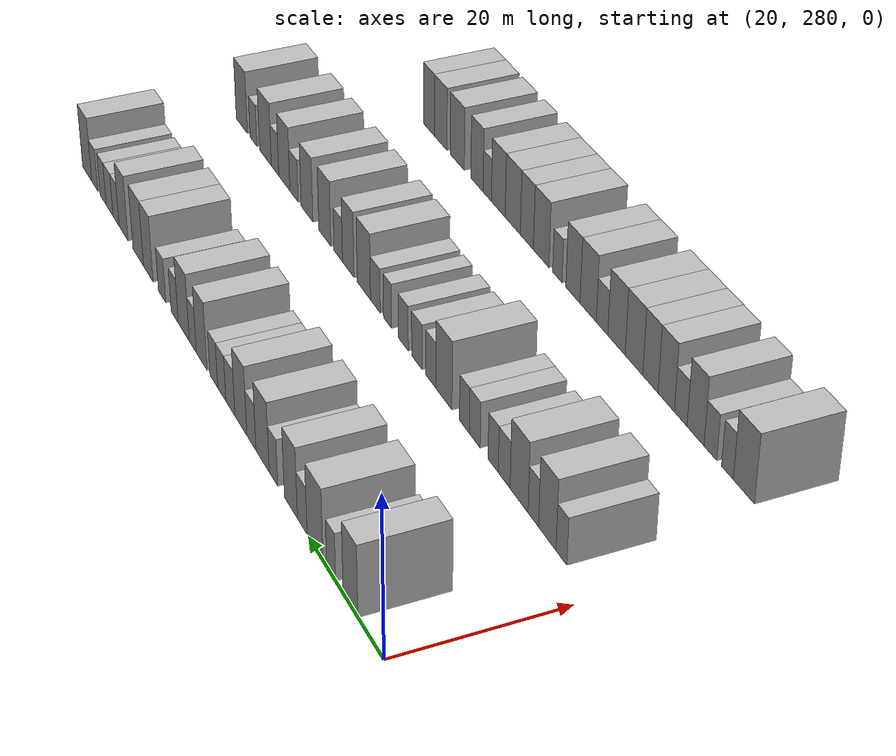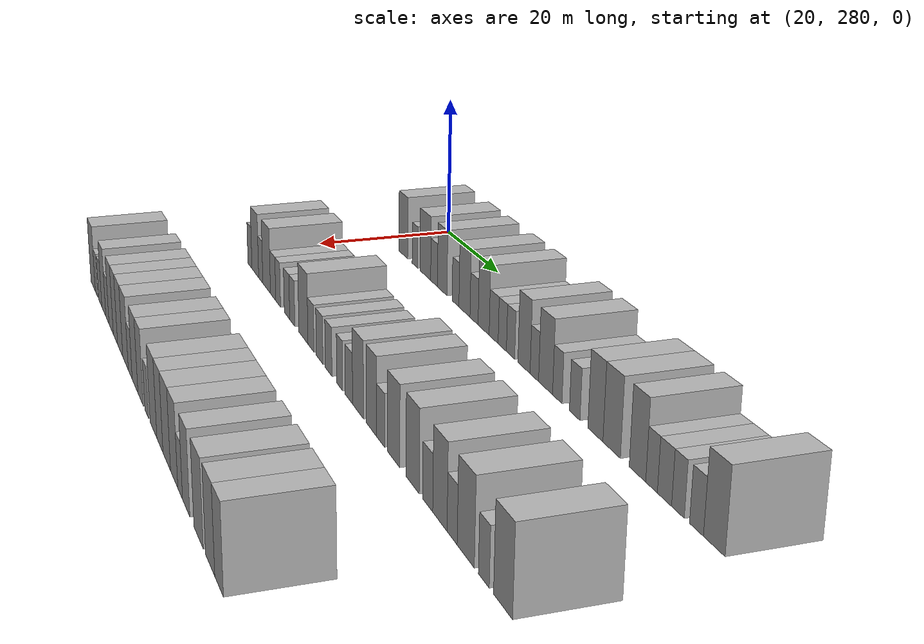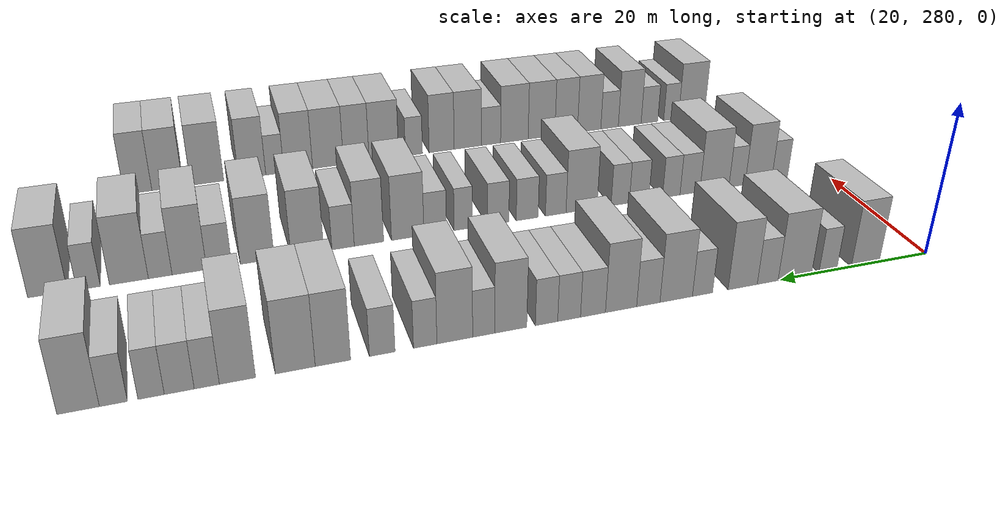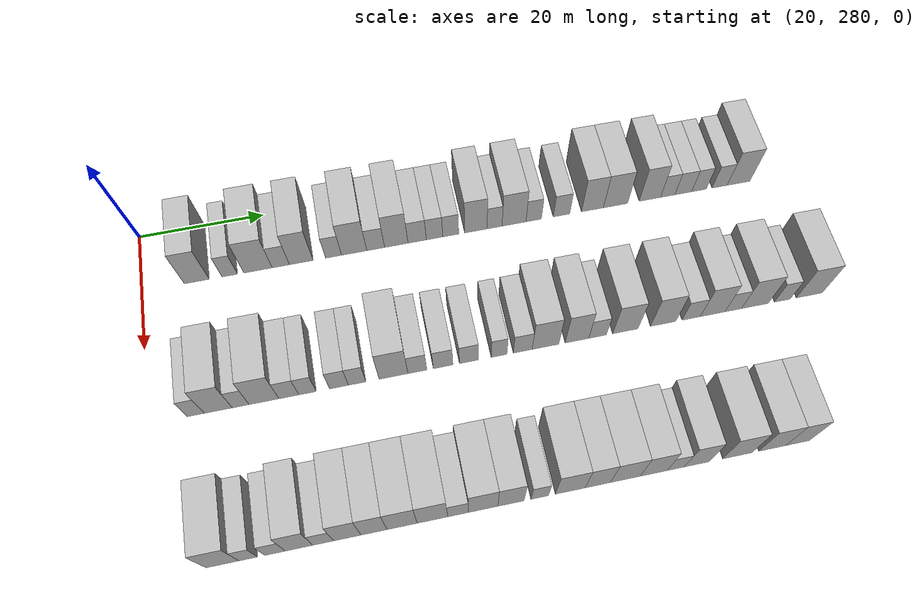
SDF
<sdf version="1.6">
 <world name="default">
  <model name="building_169">
   <static>1</static>
   <pose>25.0000 288.5307 0 0.000000 0.000000 0.000000</pose>
   <link name="link">
    <pose>0 0 4.50 0 0 0</pose>
    <collision name="collision"><geometry><box><size>10.0000 3.8896 9.0000</size></box></geometry></collision>
    <visual name="visual">
     <cast_shadows>0</cast_shadows>
     <geometry><box><size>10.0000 3.8896 9.0000</size></box></geometry>
     <material>
      <script>
       <uri>model://HANNAS_wall/materials/scripts</uri>
       <uri>model://HANNAS_wall/materials/textures</uri>
       <name>vrc/HANNAS_wall</name>
      </script>
     </material>
    </visual>
   </link>
  </model>
  <model name="building_170">
   <static>1</static>
   <pose>25.0000 293.6876 0 0.000000 0.000000 0.000000</pose>
   <link name="link">
    <pose>0 0 3.00 0 0 0</pose>
    <collision name="collision"><geometry><box><size>10.0000 2.4241 6.0000</size></box></geometry></collision>
    <visual name="visual">
     <cast_shadows>0</cast_shadows>
     <geometry><box><size>10.0000 2.4241 6.0000</size></box></geometry>
     <material>
      <script>
       <uri>model://HANNAS_wall/materials/scripts</uri>
       <uri>model://HANNAS_wall/materials/textures</uri>
       <name>vrc/HANNAS_wall</name>
      </script>
     </material>
    </visual>
   </link>
  </model>
  <model name="building_171">
   <static>1</static>
   <pose>25.0000 298.1371 0 0.000000 0.000000 0.000000</pose>
   <link name="link">
    <pose>0 0 4.50 0 0 0</pose>
    <collision name="collision"><geometry><box><size>10.0000 4.4749 9.0000</size></box></geometry></collision>
    <visual name="visual">
     <cast_shadows>0</cast_shadows>
     <geometry><box><size>10.0000 4.4749 9.0000</size></box></geometry>
     <material>
      <script>
       <uri>model://HANNAS_wall/materials/scripts</uri>
       <uri>model://HANNAS_wall/materials/textures</uri>
       <name>vrc/HANNAS_wall</name>
      </script>
     </material>
    </visual>
   </link>
  </model>
  <model name="building_172">
   <static>1</static>
   <pose>25.0000 301.7484 0 0.000000 0.000000 0.000000</pose>
   <link name="link">
    <pose>0 0 3.00 0 0 0</pose>
    <collision name="collision"><geometry><box><size>10.0000 2.7477 6.0000</size></box></geometry></collision>
    <visual name="visual">
     <cast_shadows>0</cast_shadows>
     <geometry><box><size>10.0000 2.7477 6.0000</size></box></geometry>
     <material>
      <script>
       <uri>model://HANNAS_wall/materials/scripts</uri>
       <uri>model://HANNAS_wall/materials/textures</uri>
       <name>vrc/HANNAS_wall</name>
      </script>
     </material>
    </visual>
   </link>
  </model>
  <model name="building_173">
   <static>1</static>
   <pose>25.0000 305.0171 0 0.000000 0.000000 0.000000</pose>
   <link name="link">
    <pose>0 0 4.50 0 0 0</pose>
    <collision name="collision"><geometry><box><size>10.0000 3.7898 9.0000</size></box></geometry></collision>
    <visual name="visual">
     <cast_shadows>0</cast_shadows>
     <geometry><box><size>10.0000 3.7898 9.0000</size></box></geometry>
     <material>
      <script>
       <uri>model://HANNAS_wall/materials/scripts</uri>
       <uri>model://HANNAS_wall/materials/textures</uri>
       <name>vrc/HANNAS_wall</name>
      </script>
     </material>
    </visual>
   </link>
  </model>
  <model name="building_174">
   <static>1</static>
   <pose>25.0000 310.1900 0 0.000000 0.000000 0.000000</pose>
   <link name="link">
    <pose>0 0 3.00 0 0 0</pose>
    <collision name="collision"><geometry><box><size>10.0000 2.5559 6.0000</size></box></geometry></collision>
    <visual name="visual">
     <cast_shadows>0</cast_shadows>
     <geometry><box><size>10.0000 2.5559 6.0000</size></box></geometry>
     <material>
      <script>
       <uri>model://HANNAS_wall/materials/scripts</uri>
       <uri>model://HANNAS_wall/materials/textures</uri>
       <name>vrc/HANNAS_wall</name>
      </script>
     </material>
    </visual>
   </link>
  </model>
  <model name="building_175">
   <static>1</static>
   <pose>25.0000 313.5034 0 0.000000 0.000000 0.000000</pose>
   <link name="link">
    <pose>0 0 4.50 0 0 0</pose>
    <collision name="collision"><geometry><box><size>10.0000 4.0708 9.0000</size></box></geometry></collision>
    <visual name="visual">
     <cast_shadows>0</cast_shadows>
     <geometry><box><size>10.0000 4.0708 9.0000</size></box></geometry>
     <material>
      <script>
       <uri>model://HANNAS_wall/materials/scripts</uri>
       <uri>model://HANNAS_wall/materials/textures</uri>
       <name>vrc/HANNAS_wall</name>
      </script>
     </material>
    </visual>
   </link>
  </model>
  <model name="building_176">
   <static>1</static>
   <pose>25.0000 316.9771 0 0.000000 0.000000 0.000000</pose>
   <link name="link">
    <pose>0 0 3.00 0 0 0</pose>
    <collision name="collision"><geometry><box><size>10.0000 2.8767 6.0000</size></box></geometry></collision>
    <visual name="visual">
     <cast_shadows>0</cast_shadows>
     <geometry><box><size>10.0000 2.8767 6.0000</size></box></geometry>
     <material>
      <script>
       <uri>model://HANNAS_wall/materials/scripts</uri>
       <uri>model://HANNAS_wall/materials/textures</uri>
       <name>vrc/HANNAS_wall</name>
      </script>
     </material>
    </visual>
   </link>
  </model>
  <model name="building_177">
   <static>1</static>
   <pose>25.0000 320.3161 0 0.000000 0.000000 0.000000</pose>
   <link name="link">
    <pose>0 0 4.50 0 0 0</pose>
    <collision name="collision"><geometry><box><size>10.0000 3.8013 9.0000</size></box></geometry></collision>
    <visual name="visual">
     <cast_shadows>0</cast_shadows>
     <geometry><box><size>10.0000 3.8013 9.0000</size></box></geometry>
     <material>
      <script>
       <uri>model://HANNAS_wall/materials/scripts</uri>
       <uri>model://HANNAS_wall/materials/textures</uri>
       <name>vrc/HANNAS_wall</name>
      </script>
     </material>
    </visual>
   </link>
  </model>
  <model name="building_178">
   <static>1</static>
   <pose>25.0000 323.7119 0 0.000000 0.000000 0.000000</pose>
   <link name="link">
    <pose>0 0 3.00 0 0 0</pose>
    <collision name="collision"><geometry><box><size>10.0000 2.9903 6.0000</size></box></geometry></collision>
    <visual name="visual">
     <cast_shadows>0</cast_shadows>
     <geometry><box><size>10.0000 2.9903 6.0000</size></box></geometry>
     <material>
      <script>
       <uri>model://HANNAS_wall/materials/scripts</uri>
       <uri>model://HANNAS_wall/materials/textures</uri>
       <name>vrc/HANNAS_wall</name>
      </script>
     </material>
    </visual>
   </link>
  </model>
  <model name="building_179">
   <static>1</static>
   <pose>25.0000 326.5555 0 0.000000 0.000000 0.000000</pose>
   <link name="link">
    <pose>0 0 3.00 0 0 0</pose>
    <collision name="collision"><geometry><box><size>10.0000 2.6970 6.0000</size></box></geometry></collision>
    <visual name="visual">
     <cast_shadows>0</cast_shadows>
     <geometry><box><size>10.0000 2.6970 6.0000</size></box></geometry>
     <material>
      <script>
       <uri>model://HANNAS_wall/materials/scripts</uri>
       <uri>model://HANNAS_wall/materials/textures</uri>
       <name>vrc/HANNAS_wall</name>
      </script>
     </material>
    </visual>
   </link>
  </model>
  <model name="building_180">
   <static>1</static>
   <pose>25.0000 329.2104 0 0.000000 0.000000 0.000000</pose>
   <link name="link">
    <pose>0 0 3.00 0 0 0</pose>
    <collision name="collision"><geometry><box><size>10.0000 2.6129 6.0000</size></box></geometry></collision>
    <visual name="visual">
     <cast_shadows>0</cast_shadows>
     <geometry><box><size>10.0000 2.6129 6.0000</size></box></geometry>
     <material>
      <script>
       <uri>model://HANNAS_wall/materials/scripts</uri>
       <uri>model://HANNAS_wall/materials/textures</uri>
       <name>vrc/HANNAS_wall</name>
      </script>
     </material>
    </visual>
   </link>
  </model>
  <model name="building_181">
   <static>1</static>
   <pose>25.0000 333.3618 0 0.000000 0.000000 0.000000</pose>
   <link name="link">
    <pose>0 0 4.50 0 0 0</pose>
    <collision name="collision"><geometry><box><size>10.0000 3.6899 9.0000</size></box></geometry></collision>
    <visual name="visual">
     <cast_shadows>0</cast_shadows>
     <geometry><box><size>10.0000 3.6899 9.0000</size></box></geometry>
     <material>
      <script>
       <uri>model://HANNAS_wall/materials/scripts</uri>
       <uri>model://HANNAS_wall/materials/textures</uri>
       <name>vrc/HANNAS_wall</name>
      </script>
     </material>
    </visual>
   </link>
  </model>
  <model name="building_182">
   <static>1</static>
   <pose>25.0000 336.4536 0 0.000000 0.000000 0.000000</pose>
   <link name="link">
    <pose>0 0 3.00 0 0 0</pose>
    <collision name="collision"><geometry><box><size>10.0000 2.4937 6.0000</size></box></geometry></collision>
    <visual name="visual">
     <cast_shadows>0</cast_shadows>
     <geometry><box><size>10.0000 2.4937 6.0000</size></box></geometry>
     <material>
      <script>
       <uri>model://HANNAS_wall/materials/scripts</uri>
       <uri>model://HANNAS_wall/materials/textures</uri>
       <name>vrc/HANNAS_wall</name>
      </script>
     </material>
    </visual>
   </link>
  </model>
  <model name="building_183">
   <static>1</static>
   <pose>25.0000 339.6924 0 0.000000 0.000000 0.000000</pose>
   <link name="link">
    <pose>0 0 4.50 0 0 0</pose>
    <collision name="collision"><geometry><box><size>10.0000 3.9839 9.0000</size></box></geometry></collision>
    <visual name="visual">
     <cast_shadows>0</cast_shadows>
     <geometry><box><size>10.0000 3.9839 9.0000</size></box></geometry>
     <material>
      <script>
       <uri>model://HANNAS_wall/materials/scripts</uri>
       <uri>model://HANNAS_wall/materials/textures</uri>
       <name>vrc/HANNAS_wall</name>
      </script>
     </material>
    </visual>
   </link>
  </model>
  <model name="building_184">
   <static>1</static>
   <pose>25.0000 342.9721 0 0.000000 0.000000 0.000000</pose>
   <link name="link">
    <pose>0 0 3.00 0 0 0</pose>
    <collision name="collision"><geometry><box><size>10.0000 2.5756 6.0000</size></box></geometry></collision>
    <visual name="visual">
     <cast_shadows>0</cast_shadows>
     <geometry><box><size>10.0000 2.5756 6.0000</size></box></geometry>
     <material>
      <script>
       <uri>model://HANNAS_wall/materials/scripts</uri>
       <uri>model://HANNAS_wall/materials/textures</uri>
       <name>vrc/HANNAS_wall</name>
      </script>
     </material>
    </visual>
   </link>
  </model>
  <model name="building_185">
   <static>1</static>
   <pose>25.0000 347.6410 0 0.000000 0.000000 0.000000</pose>
   <link name="link">
    <pose>0 0 3.00 0 0 0</pose>
    <collision name="collision"><geometry><box><size>10.0000 2.7623 6.0000</size></box></geometry></collision>
    <visual name="visual">
     <cast_shadows>0</cast_shadows>
     <geometry><box><size>10.0000 2.7623 6.0000</size></box></geometry>
     <material>
      <script>
       <uri>model://HANNAS_wall/materials/scripts</uri>
       <uri>model://HANNAS_wall/materials/textures</uri>
       <name>vrc/HANNAS_wall</name>
      </script>
     </material>
    </visual>
   </link>
  </model>
  <model name="building_186">
   <static>1</static>
   <pose>25.0000 352.8762 0 0.000000 0.000000 0.000000</pose>
   <link name="link">
    <pose>0 0 4.50 0 0 0</pose>
    <collision name="collision"><geometry><box><size>10.0000 3.7081 9.0000</size></box></geometry></collision>
    <visual name="visual">
     <cast_shadows>0</cast_shadows>
     <geometry><box><size>10.0000 3.7081 9.0000</size></box></geometry>
     <material>
      <script>
       <uri>model://HANNAS_wall/materials/scripts</uri>
       <uri>model://HANNAS_wall/materials/textures</uri>
       <name>vrc/HANNAS_wall</name>
      </script>
     </material>
    </visual>
   </link>
  </model>
  <model name="building_187">
   <static>1</static>
   <pose>25.0000 356.7947 0 0.000000 0.000000 0.000000</pose>
   <link name="link">
    <pose>0 0 4.50 0 0 0</pose>
    <collision name="collision"><geometry><box><size>10.0000 4.1288 9.0000</size></box></geometry></collision>
    <visual name="visual">
     <cast_shadows>0</cast_shadows>
     <geometry><box><size>10.0000 4.1288 9.0000</size></box></geometry>
     <material>
      <script>
       <uri>model://HANNAS_wall/materials/scripts</uri>
       <uri>model://HANNAS_wall/materials/textures</uri>
       <name>vrc/HANNAS_wall</name>
      </script>
     </material>
    </visual>
   </link>
  </model>
  <model name="building_188">
   <static>1</static>
   <pose>25.0000 362.6738 0 0.000000 0.000000 0.000000</pose>
   <link name="link">
    <pose>0 0 4.50 0 0 0</pose>
    <collision name="collision"><geometry><box><size>10.0000 3.6294 9.0000</size></box></geometry></collision>
    <visual name="visual">
     <cast_shadows>0</cast_shadows>
     <geometry><box><size>10.0000 3.6294 9.0000</size></box></geometry>
     <material>
      <script>
       <uri>model://HANNAS_wall/materials/scripts</uri>
       <uri>model://HANNAS_wall/materials/textures</uri>
       <name>vrc/HANNAS_wall</name>
      </script>
     </material>
    </visual>
   </link>
  </model>
  <model name="building_189">
   <static>1</static>
   <pose>25.0000 365.7269 0 0.000000 0.000000 0.000000</pose>
   <link name="link">
    <pose>0 0 3.00 0 0 0</pose>
    <collision name="collision"><geometry><box><size>10.0000 2.4767 6.0000</size></box></geometry></collision>
    <visual name="visual">
     <cast_shadows>0</cast_shadows>
     <geometry><box><size>10.0000 2.4767 6.0000</size></box></geometry>
     <material>
      <script>
       <uri>model://HANNAS_wall/materials/scripts</uri>
       <uri>model://HANNAS_wall/materials/textures</uri>
       <name>vrc/HANNAS_wall</name>
      </script>
     </material>
    </visual>
   </link>
  </model>
  <model name="building_190">
   <static>1</static>
   <pose>25.0000 368.4239 0 0.000000 0.000000 0.000000</pose>
   <link name="link">
    <pose>0 0 3.00 0 0 0</pose>
    <collision name="collision"><geometry><box><size>10.0000 2.9174 6.0000</size></box></geometry></collision>
    <visual name="visual">
     <cast_shadows>0</cast_shadows>
     <geometry><box><size>10.0000 2.9174 6.0000</size></box></geometry>
     <material>
      <script>
       <uri>model://HANNAS_wall/materials/scripts</uri>
       <uri>model://HANNAS_wall/materials/textures</uri>
       <name>vrc/HANNAS_wall</name>
      </script>
     </material>
    </visual>
   </link>
  </model>
  <model name="building_191">
   <static>1</static>
   <pose>25.0000 371.1505 0 0.000000 0.000000 0.000000</pose>
   <link name="link">
    <pose>0 0 3.00 0 0 0</pose>
    <collision name="collision"><geometry><box><size>10.0000 2.5357 6.0000</size></box></geometry></collision>
    <visual name="visual">
     <cast_shadows>0</cast_shadows>
     <geometry><box><size>10.0000 2.5357 6.0000</size></box></geometry>
     <material>
      <script>
       <uri>model://HANNAS_wall/materials/scripts</uri>
       <uri>model://HANNAS_wall/materials/textures</uri>
       <name>vrc/HANNAS_wall</name>
      </script>
     </material>
    </visual>
   </link>
  </model>
  <model name="building_192">
   <static>1</static>
   <pose>25.0000 374.7431 0 0.000000 0.000000 0.000000</pose>
   <link name="link">
    <pose>0 0 3.00 0 0 0</pose>
    <collision name="collision"><geometry><box><size>10.0000 2.6495 6.0000</size></box></geometry></collision>
    <visual name="visual">
     <cast_shadows>0</cast_shadows>
     <geometry><box><size>10.0000 2.6495 6.0000</size></box></geometry>
     <material>
      <script>
       <uri>model://HANNAS_wall/materials/scripts</uri>
       <uri>model://HANNAS_wall/materials/textures</uri>
       <name>vrc/HANNAS_wall</name>
      </script>
     </material>
    </visual>
   </link>
  </model>
  <model name="building_193">
   <static>1</static>
   <pose>25.0000 378.0452 0 0.000000 0.000000 0.000000</pose>
   <link name="link">
    <pose>0 0 4.50 0 0 0</pose>
    <collision name="collision"><geometry><box><size>10.0000 3.9546 9.0000</size></box></geometry></collision>
    <visual name="visual">
     <cast_shadows>0</cast_shadows>
     <geometry><box><size>10.0000 3.9546 9.0000</size></box></geometry>
     <material>
      <script>
       <uri>model://HANNAS_wall/materials/scripts</uri>
       <uri>model://HANNAS_wall/materials/textures</uri>
       <name>vrc/HANNAS_wall</name>
      </script>
     </material>
    </visual>
   </link>
  </model>
  <model name="building_361">
   <static>1</static>
   <pose>47.0000 286.9057 0 0.000000 0.000000 0.000000</pose>
   <link name="link">
    <pose>0 0 3.00 0 0 0</pose>
    <collision name="collision"><geometry><box><size>10.0000 2.4631 6.0000</size></box></geometry></collision>
    <visual name="visual">
     <cast_shadows>0</cast_shadows>
     <geometry><box><size>10.0000 2.4631 6.0000</size></box></geometry>
     <material>
      <script>
       <uri>model://HANNAS_wall/materials/scripts</uri>
       <uri>model://HANNAS_wall/materials/textures</uri>
       <name>vrc/HANNAS_wall</name>
      </script>
     </material>
    </visual>
   </link>
  </model>
  <model name="building_362">
   <static>1</static>
   <pose>47.0000 290.1833 0 0.000000 0.000000 0.000000</pose>
   <link name="link">
    <pose>0 0 4.50 0 0 0</pose>
    <collision name="collision"><geometry><box><size>10.0000 4.0920 9.0000</size></box></geometry></collision>
    <visual name="visual">
     <cast_shadows>0</cast_shadows>
     <geometry><box><size>10.0000 4.0920 9.0000</size></box></geometry>
     <material>
      <script>
       <uri>model://HANNAS_wall/materials/scripts</uri>
       <uri>model://HANNAS_wall/materials/textures</uri>
       <name>vrc/HANNAS_wall</name>
      </script>
     </material>
    </visual>
   </link>
  </model>
  <model name="building_363">
   <static>1</static>
   <pose>47.0000 293.4669 0 0.000000 0.000000 0.000000</pose>
   <link name="link">
    <pose>0 0 3.00 0 0 0</pose>
    <collision name="collision"><geometry><box><size>10.0000 2.4753 6.0000</size></box></geometry></collision>
    <visual name="visual">
     <cast_shadows>0</cast_shadows>
     <geometry><box><size>10.0000 2.4753 6.0000</size></box></geometry>
     <material>
      <script>
       <uri>model://HANNAS_wall/materials/scripts</uri>
       <uri>model://HANNAS_wall/materials/textures</uri>
       <name>vrc/HANNAS_wall</name>
      </script>
     </material>
    </visual>
   </link>
  </model>
  <model name="building_364">
   <static>1</static>
   <pose>47.0000 296.8909 0 0.000000 0.000000 0.000000</pose>
   <link name="link">
    <pose>0 0 4.50 0 0 0</pose>
    <collision name="collision"><geometry><box><size>10.0000 4.3726 9.0000</size></box></geometry></collision>
    <visual name="visual">
     <cast_shadows>0</cast_shadows>
     <geometry><box><size>10.0000 4.3726 9.0000</size></box></geometry>
     <material>
      <script>
       <uri>model://HANNAS_wall/materials/scripts</uri>
       <uri>model://HANNAS_wall/materials/textures</uri>
       <name>vrc/HANNAS_wall</name>
      </script>
     </material>
    </visual>
   </link>
  </model>
  <model name="building_365">
   <static>1</static>
   <pose>47.0000 300.5530 0 0.000000 0.000000 0.000000</pose>
   <link name="link">
    <pose>0 0 3.00 0 0 0</pose>
    <collision name="collision"><geometry><box><size>10.0000 2.9516 6.0000</size></box></geometry></collision>
    <visual name="visual">
     <cast_shadows>0</cast_shadows>
     <geometry><box><size>10.0000 2.9516 6.0000</size></box></geometry>
     <material>
      <script>
       <uri>model://HANNAS_wall/materials/scripts</uri>
       <uri>model://HANNAS_wall/materials/textures</uri>
       <name>vrc/HANNAS_wall</name>
      </script>
     </material>
    </visual>
   </link>
  </model>
  <model name="building_366">
   <static>1</static>
   <pose>47.0000 303.3186 0 0.000000 0.000000 0.000000</pose>
   <link name="link">
    <pose>0 0 3.00 0 0 0</pose>
    <collision name="collision"><geometry><box><size>10.0000 2.5795 6.0000</size></box></geometry></collision>
    <visual name="visual">
     <cast_shadows>0</cast_shadows>
     <geometry><box><size>10.0000 2.5795 6.0000</size></box></geometry>
     <material>
      <script>
       <uri>model://HANNAS_wall/materials/scripts</uri>
       <uri>model://HANNAS_wall/materials/textures</uri>
       <name>vrc/HANNAS_wall</name>
      </script>
     </material>
    </visual>
   </link>
  </model>
  <model name="building_367">
   <static>1</static>
   <pose>47.0000 308.0113 0 0.000000 0.000000 0.000000</pose>
   <link name="link">
    <pose>0 0 3.00 0 0 0</pose>
    <collision name="collision"><geometry><box><size>10.0000 2.8058 6.0000</size></box></geometry></collision>
    <visual name="visual">
     <cast_shadows>0</cast_shadows>
     <geometry><box><size>10.0000 2.8058 6.0000</size></box></geometry>
     <material>
      <script>
       <uri>model://HANNAS_wall/materials/scripts</uri>
       <uri>model://HANNAS_wall/materials/textures</uri>
       <name>vrc/HANNAS_wall</name>
      </script>
     </material>
    </visual>
   </link>
  </model>
  <model name="building_368">
   <static>1</static>
   <pose>47.0000 310.7249 0 0.000000 0.000000 0.000000</pose>
   <link name="link">
    <pose>0 0 3.00 0 0 0</pose>
    <collision name="collision"><geometry><box><size>10.0000 2.6215 6.0000</size></box></geometry></collision>
    <visual name="visual">
     <cast_shadows>0</cast_shadows>
     <geometry><box><size>10.0000 2.6215 6.0000</size></box></geometry>
     <material>
      <script>
       <uri>model://HANNAS_wall/materials/scripts</uri>
       <uri>model://HANNAS_wall/materials/textures</uri>
       <name>vrc/HANNAS_wall</name>
      </script>
     </material>
    </visual>
   </link>
  </model>
  <model name="building_369">
   <static>1</static>
   <pose>47.0000 316.2155 0 0.000000 0.000000 0.000000</pose>
   <link name="link">
    <pose>0 0 4.50 0 0 0</pose>
    <collision name="collision"><geometry><box><size>10.0000 4.3596 9.0000</size></box></geometry></collision>
    <visual name="visual">
     <cast_shadows>0</cast_shadows>
     <geometry><box><size>10.0000 4.3596 9.0000</size></box></geometry>
     <material>
      <script>
       <uri>model://HANNAS_wall/materials/scripts</uri>
       <uri>model://HANNAS_wall/materials/textures</uri>
       <name>vrc/HANNAS_wall</name>
      </script>
     </material>
    </visual>
   </link>
  </model>
  <model name="building_370">
   <static>1</static>
   <pose>47.0000 319.8212 0 0.000000 0.000000 0.000000</pose>
   <link name="link">
    <pose>0 0 3.00 0 0 0</pose>
    <collision name="collision"><geometry><box><size>10.0000 2.8519 6.0000</size></box></geometry></collision>
    <visual name="visual">
     <cast_shadows>0</cast_shadows>
     <geometry><box><size>10.0000 2.8519 6.0000</size></box></geometry>
     <material>
      <script>
       <uri>model://HANNAS_wall/materials/scripts</uri>
       <uri>model://HANNAS_wall/materials/textures</uri>
       <name>vrc/HANNAS_wall</name>
      </script>
     </material>
    </visual>
   </link>
  </model>
  <model name="building_371">
   <static>1</static>
   <pose>47.0000 323.7410 0 0.000000 0.000000 0.000000</pose>
   <link name="link">
    <pose>0 0 3.00 0 0 0</pose>
    <collision name="collision"><geometry><box><size>10.0000 2.9876 6.0000</size></box></geometry></collision>
    <visual name="visual">
     <cast_shadows>0</cast_shadows>
     <geometry><box><size>10.0000 2.9876 6.0000</size></box></geometry>
     <material>
      <script>
       <uri>model://HANNAS_wall/materials/scripts</uri>
       <uri>model://HANNAS_wall/materials/textures</uri>
       <name>vrc/HANNAS_wall</name>
      </script>
     </material>
    </visual>
   </link>
  </model>
  <model name="building_372">
   <static>1</static>
   <pose>47.0000 327.6753 0 0.000000 0.000000 0.000000</pose>
   <link name="link">
    <pose>0 0 3.00 0 0 0</pose>
    <collision name="collision"><geometry><box><size>10.0000 2.8811 6.0000</size></box></geometry></collision>
    <visual name="visual">
     <cast_shadows>0</cast_shadows>
     <geometry><box><size>10.0000 2.8811 6.0000</size></box></geometry>
     <material>
      <script>
       <uri>model://HANNAS_wall/materials/scripts</uri>
       <uri>model://HANNAS_wall/materials/textures</uri>
       <name>vrc/HANNAS_wall</name>
      </script>
     </material>
    </visual>
   </link>
  </model>
  <model name="building_373">
   <static>1</static>
   <pose>47.0000 332.3232 0 0.000000 0.000000 0.000000</pose>
   <link name="link">
    <pose>0 0 3.00 0 0 0</pose>
    <collision name="collision"><geometry><box><size>10.0000 2.4147 6.0000</size></box></geometry></collision>
    <visual name="visual">
     <cast_shadows>0</cast_shadows>
     <geometry><box><size>10.0000 2.4147 6.0000</size></box></geometry>
     <material>
      <script>
       <uri>model://HANNAS_wall/materials/scripts</uri>
       <uri>model://HANNAS_wall/materials/textures</uri>
       <name>vrc/HANNAS_wall</name>
      </script>
     </material>
    </visual>
   </link>
  </model>
  <model name="building_374">
   <static>1</static>
   <pose>47.0000 335.9971 0 0.000000 0.000000 0.000000</pose>
   <link name="link">
    <pose>0 0 3.00 0 0 0</pose>
    <collision name="collision"><geometry><box><size>10.0000 2.9330 6.0000</size></box></geometry></collision>
    <visual name="visual">
     <cast_shadows>0</cast_shadows>
     <geometry><box><size>10.0000 2.9330 6.0000</size></box></geometry>
     <material>
      <script>
       <uri>model://HANNAS_wall/materials/scripts</uri>
       <uri>model://HANNAS_wall/materials/textures</uri>
       <name>vrc/HANNAS_wall</name>
      </script>
     </material>
    </visual>
   </link>
  </model>
  <model name="building_375">
   <static>1</static>
   <pose>47.0000 339.5418 0 0.000000 0.000000 0.000000</pose>
   <link name="link">
    <pose>0 0 4.50 0 0 0</pose>
    <collision name="collision"><geometry><box><size>10.0000 4.1564 9.0000</size></box></geometry></collision>
    <visual name="visual">
     <cast_shadows>0</cast_shadows>
     <geometry><box><size>10.0000 4.1564 9.0000</size></box></geometry>
     <material>
      <script>
       <uri>model://HANNAS_wall/materials/scripts</uri>
       <uri>model://HANNAS_wall/materials/textures</uri>
       <name>vrc/HANNAS_wall</name>
      </script>
     </material>
    </visual>
   </link>
  </model>
  <model name="building_376">
   <static>1</static>
   <pose>47.0000 344.4669 0 0.000000 0.000000 0.000000</pose>
   <link name="link">
    <pose>0 0 4.50 0 0 0</pose>
    <collision name="collision"><geometry><box><size>10.0000 3.6940 9.0000</size></box></geometry></collision>
    <visual name="visual">
     <cast_shadows>0</cast_shadows>
     <geometry><box><size>10.0000 3.6940 9.0000</size></box></geometry>
     <material>
      <script>
       <uri>model://HANNAS_wall/materials/scripts</uri>
       <uri>model://HANNAS_wall/materials/textures</uri>
       <name>vrc/HANNAS_wall</name>
      </script>
     </material>
    </visual>
   </link>
  </model>
  <model name="building_377">
   <static>1</static>
   <pose>47.0000 347.7047 0 0.000000 0.000000 0.000000</pose>
   <link name="link">
    <pose>0 0 3.00 0 0 0</pose>
    <collision name="collision"><geometry><box><size>10.0000 2.7815 6.0000</size></box></geometry></collision>
    <visual name="visual">
     <cast_shadows>0</cast_shadows>
     <geometry><box><size>10.0000 2.7815 6.0000</size></box></geometry>
     <material>
      <script>
       <uri>model://HANNAS_wall/materials/scripts</uri>
       <uri>model://HANNAS_wall/materials/textures</uri>
       <name>vrc/HANNAS_wall</name>
      </script>
     </material>
    </visual>
   </link>
  </model>
  <model name="building_378">
   <static>1</static>
   <pose>47.0000 352.1076 0 0.000000 0.000000 0.000000</pose>
   <link name="link">
    <pose>0 0 4.50 0 0 0</pose>
    <collision name="collision"><geometry><box><size>10.0000 4.0244 9.0000</size></box></geometry></collision>
    <visual name="visual">
     <cast_shadows>0</cast_shadows>
     <geometry><box><size>10.0000 4.0244 9.0000</size></box></geometry>
     <material>
      <script>
       <uri>model://HANNAS_wall/materials/scripts</uri>
       <uri>model://HANNAS_wall/materials/textures</uri>
       <name>vrc/HANNAS_wall</name>
      </script>
     </material>
    </visual>
   </link>
  </model>
  <model name="building_379">
   <static>1</static>
   <pose>47.0000 358.1480 0 0.000000 0.000000 0.000000</pose>
   <link name="link">
    <pose>0 0 4.50 0 0 0</pose>
    <collision name="collision"><geometry><box><size>10.0000 4.0564 9.0000</size></box></geometry></collision>
    <visual name="visual">
     <cast_shadows>0</cast_shadows>
     <geometry><box><size>10.0000 4.0564 9.0000</size></box></geometry>
     <material>
      <script>
       <uri>model://HANNAS_wall/materials/scripts</uri>
       <uri>model://HANNAS_wall/materials/textures</uri>
       <name>vrc/HANNAS_wall</name>
      </script>
     </material>
    </visual>
   </link>
  </model>
  <model name="building_380">
   <static>1</static>
   <pose>47.0000 362.6476 0 0.000000 0.000000 0.000000</pose>
   <link name="link">
    <pose>0 0 3.00 0 0 0</pose>
    <collision name="collision"><geometry><box><size>10.0000 2.9427 6.0000</size></box></geometry></collision>
    <visual name="visual">
     <cast_shadows>0</cast_shadows>
     <geometry><box><size>10.0000 2.9427 6.0000</size></box></geometry>
     <material>
      <script>
       <uri>model://HANNAS_wall/materials/scripts</uri>
       <uri>model://HANNAS_wall/materials/textures</uri>
       <name>vrc/HANNAS_wall</name>
      </script>
     </material>
    </visual>
   </link>
  </model>
  <model name="building_381">
   <static>1</static>
   <pose>47.0000 366.1124 0 0.000000 0.000000 0.000000</pose>
   <link name="link">
    <pose>0 0 4.50 0 0 0</pose>
    <collision name="collision"><geometry><box><size>10.0000 3.9868 9.0000</size></box></geometry></collision>
    <visual name="visual">
     <cast_shadows>0</cast_shadows>
     <geometry><box><size>10.0000 3.9868 9.0000</size></box></geometry>
     <material>
      <script>
       <uri>model://HANNAS_wall/materials/scripts</uri>
       <uri>model://HANNAS_wall/materials/textures</uri>
       <name>vrc/HANNAS_wall</name>
      </script>
     </material>
    </visual>
   </link>
  </model>
  <model name="building_382">
   <static>1</static>
   <pose>47.0000 369.4550 0 0.000000 0.000000 0.000000</pose>
   <link name="link">
    <pose>0 0 3.00 0 0 0</pose>
    <collision name="collision"><geometry><box><size>10.0000 2.6985 6.0000</size></box></geometry></collision>
    <visual name="visual">
     <cast_shadows>0</cast_shadows>
     <geometry><box><size>10.0000 2.6985 6.0000</size></box></geometry>
     <material>
      <script>
       <uri>model://HANNAS_wall/materials/scripts</uri>
       <uri>model://HANNAS_wall/materials/textures</uri>
       <name>vrc/HANNAS_wall</name>
      </script>
     </material>
    </visual>
   </link>
  </model>
  <model name="building_383">
   <static>1</static>
   <pose>47.0000 372.9890 0 0.000000 0.000000 0.000000</pose>
   <link name="link">
    <pose>0 0 4.50 0 0 0</pose>
    <collision name="collision"><geometry><box><size>10.0000 4.3695 9.0000</size></box></geometry></collision>
    <visual name="visual">
     <cast_shadows>0</cast_shadows>
     <geometry><box><size>10.0000 4.3695 9.0000</size></box></geometry>
     <material>
      <script>
       <uri>model://HANNAS_wall/materials/scripts</uri>
       <uri>model://HANNAS_wall/materials/textures</uri>
       <name>vrc/HANNAS_wall</name>
      </script>
     </material>
    </visual>
   </link>
  </model>
  <model name="building_384">
   <static>1</static>
   <pose>47.0000 377.4759 0 0.000000 0.000000 0.000000</pose>
   <link name="link">
    <pose>0 0 3.00 0 0 0</pose>
    <collision name="collision"><geometry><box><size>10.0000 2.6042 6.0000</size></box></geometry></collision>
    <visual name="visual">
     <cast_shadows>0</cast_shadows>
     <geometry><box><size>10.0000 2.6042 6.0000</size></box></geometry>
     <material>
      <script>
       <uri>model://HANNAS_wall/materials/scripts</uri>
       <uri>model://HANNAS_wall/materials/textures</uri>
       <name>vrc/HANNAS_wall</name>
      </script>
     </material>
    </visual>
   </link>
  </model>
  <model name="building_385">
   <static>1</static>
   <pose>47.0000 381.9280 0 0.000000 0.000000 0.000000</pose>
   <link name="link">
    <pose>0 0 4.50 0 0 0</pose>
    <collision name="collision"><geometry><box><size>10.0000 4.3000 9.0000</size></box></geometry></collision>
    <visual name="visual">
     <cast_shadows>0</cast_shadows>
     <geometry><box><size>10.0000 4.3000 9.0000</size></box></geometry>
     <material>
      <script>
       <uri>model://HANNAS_wall/materials/scripts</uri>
       <uri>model://HANNAS_wall/materials/textures</uri>
       <name>vrc/HANNAS_wall</name>
      </script>
     </material>
    </visual>
   </link>
  </model>
  <model name="building_557">
   <static>1</static>
   <pose>69.0000 289.0738 0 0.000000 0.000000 0.000000</pose>
   <link name="link">
    <pose>0 0 4.50 0 0 0</pose>
    <collision name="collision"><geometry><box><size>10.0000 4.4442 9.0000</size></box></geometry></collision>
    <visual name="visual">
     <cast_shadows>0</cast_shadows>
     <geometry><box><size>10.0000 4.4442 9.0000</size></box></geometry>
     <material>
      <script>
       <uri>model://HANNAS_wall/materials/scripts</uri>
       <uri>model://HANNAS_wall/materials/textures</uri>
       <name>vrc/HANNAS_wall</name>
      </script>
     </material>
    </visual>
   </link>
  </model>
  <model name="building_558">
   <static>1</static>
   <pose>69.0000 292.5486 0 0.000000 0.000000 0.000000</pose>
   <link name="link">
    <pose>0 0 3.00 0 0 0</pose>
    <collision name="collision"><geometry><box><size>10.0000 2.5054 6.0000</size></box></geometry></collision>
    <visual name="visual">
     <cast_shadows>0</cast_shadows>
     <geometry><box><size>10.0000 2.5054 6.0000</size></box></geometry>
     <material>
      <script>
       <uri>model://HANNAS_wall/materials/scripts</uri>
       <uri>model://HANNAS_wall/materials/textures</uri>
       <name>vrc/HANNAS_wall</name>
      </script>
     </material>
    </visual>
   </link>
  </model>
  <model name="building_559">
   <static>1</static>
   <pose>69.0000 296.1926 0 0.000000 0.000000 0.000000</pose>
   <link name="link">
    <pose>0 0 3.00 0 0 0</pose>
    <collision name="collision"><geometry><box><size>10.0000 2.7826 6.0000</size></box></geometry></collision>
    <visual name="visual">
     <cast_shadows>0</cast_shadows>
     <geometry><box><size>10.0000 2.7826 6.0000</size></box></geometry>
     <material>
      <script>
       <uri>model://HANNAS_wall/materials/scripts</uri>
       <uri>model://HANNAS_wall/materials/textures</uri>
       <name>vrc/HANNAS_wall</name>
      </script>
     </material>
    </visual>
   </link>
  </model>
  <model name="building_560">
   <static>1</static>
   <pose>69.0000 299.4744 0 0.000000 0.000000 0.000000</pose>
   <link name="link">
    <pose>0 0 4.50 0 0 0</pose>
    <collision name="collision"><geometry><box><size>10.0000 3.7809 9.0000</size></box></geometry></collision>
    <visual name="visual">
     <cast_shadows>0</cast_shadows>
     <geometry><box><size>10.0000 3.7809 9.0000</size></box></geometry>
     <material>
      <script>
       <uri>model://HANNAS_wall/materials/scripts</uri>
       <uri>model://HANNAS_wall/materials/textures</uri>
       <name>vrc/HANNAS_wall</name>
      </script>
     </material>
    </visual>
   </link>
  </model>
  <model name="building_561">
   <static>1</static>
   <pose>69.0000 302.7967 0 0.000000 0.000000 0.000000</pose>
   <link name="link">
    <pose>0 0 3.00 0 0 0</pose>
    <collision name="collision"><geometry><box><size>10.0000 2.8638 6.0000</size></box></geometry></collision>
    <visual name="visual">
     <cast_shadows>0</cast_shadows>
     <geometry><box><size>10.0000 2.8638 6.0000</size></box></geometry>
     <material>
      <script>
       <uri>model://HANNAS_wall/materials/scripts</uri>
       <uri>model://HANNAS_wall/materials/textures</uri>
       <name>vrc/HANNAS_wall</name>
      </script>
     </material>
    </visual>
   </link>
  </model>
  <model name="building_562">
   <static>1</static>
   <pose>69.0000 306.1277 0 0.000000 0.000000 0.000000</pose>
   <link name="link">
    <pose>0 0 4.50 0 0 0</pose>
    <collision name="collision"><geometry><box><size>10.0000 3.7982 9.0000</size></box></geometry></collision>
    <visual name="visual">
     <cast_shadows>0</cast_shadows>
     <geometry><box><size>10.0000 3.7982 9.0000</size></box></geometry>
     <material>
      <script>
       <uri>model://HANNAS_wall/materials/scripts</uri>
       <uri>model://HANNAS_wall/materials/textures</uri>
       <name>vrc/HANNAS_wall</name>
      </script>
     </material>
    </visual>
   </link>
  </model>
  <model name="building_563">
   <static>1</static>
   <pose>69.0000 309.8352 0 0.000000 0.000000 0.000000</pose>
   <link name="link">
    <pose>0 0 4.50 0 0 0</pose>
    <collision name="collision"><geometry><box><size>10.0000 3.6168 9.0000</size></box></geometry></collision>
    <visual name="visual">
     <cast_shadows>0</cast_shadows>
     <geometry><box><size>10.0000 3.6168 9.0000</size></box></geometry>
     <material>
      <script>
       <uri>model://HANNAS_wall/materials/scripts</uri>
       <uri>model://HANNAS_wall/materials/textures</uri>
       <name>vrc/HANNAS_wall</name>
      </script>
     </material>
    </visual>
   </link>
  </model>
  <model name="building_564">
   <static>1</static>
   <pose>69.0000 313.7578 0 0.000000 0.000000 0.000000</pose>
   <link name="link">
    <pose>0 0 4.50 0 0 0</pose>
    <collision name="collision"><geometry><box><size>10.0000 4.2283 9.0000</size></box></geometry></collision>
    <visual name="visual">
     <cast_shadows>0</cast_shadows>
     <geometry><box><size>10.0000 4.2283 9.0000</size></box></geometry>
     <material>
      <script>
       <uri>model://HANNAS_wall/materials/scripts</uri>
       <uri>model://HANNAS_wall/materials/textures</uri>
       <name>vrc/HANNAS_wall</name>
      </script>
     </material>
    </visual>
   </link>
  </model>
  <model name="building_565">
   <static>1</static>
   <pose>69.0000 318.0195 0 0.000000 0.000000 0.000000</pose>
   <link name="link">
    <pose>0 0 4.50 0 0 0</pose>
    <collision name="collision"><geometry><box><size>10.0000 4.2952 9.0000</size></box></geometry></collision>
    <visual name="visual">
     <cast_shadows>0</cast_shadows>
     <geometry><box><size>10.0000 4.2952 9.0000</size></box></geometry>
     <material>
      <script>
       <uri>model://HANNAS_wall/materials/scripts</uri>
       <uri>model://HANNAS_wall/materials/textures</uri>
       <name>vrc/HANNAS_wall</name>
      </script>
     </material>
    </visual>
   </link>
  </model>
  <model name="building_566">
   <static>1</static>
   <pose>69.0000 321.6338 0 0.000000 0.000000 0.000000</pose>
   <link name="link">
    <pose>0 0 3.00 0 0 0</pose>
    <collision name="collision"><geometry><box><size>10.0000 2.9332 6.0000</size></box></geometry></collision>
    <visual name="visual">
     <cast_shadows>0</cast_shadows>
     <geometry><box><size>10.0000 2.9332 6.0000</size></box></geometry>
     <material>
      <script>
       <uri>model://HANNAS_wall/materials/scripts</uri>
       <uri>model://HANNAS_wall/materials/textures</uri>
       <name>vrc/HANNAS_wall</name>
      </script>
     </material>
    </visual>
   </link>
  </model>
  <model name="building_567">
   <static>1</static>
   <pose>69.0000 325.1912 0 0.000000 0.000000 0.000000</pose>
   <link name="link">
    <pose>0 0 4.50 0 0 0</pose>
    <collision name="collision"><geometry><box><size>10.0000 4.1817 9.0000</size></box></geometry></collision>
    <visual name="visual">
     <cast_shadows>0</cast_shadows>
     <geometry><box><size>10.0000 4.1817 9.0000</size></box></geometry>
     <material>
      <script>
       <uri>model://HANNAS_wall/materials/scripts</uri>
       <uri>model://HANNAS_wall/materials/textures</uri>
       <name>vrc/HANNAS_wall</name>
      </script>
     </material>
    </visual>
   </link>
  </model>
  <model name="building_568">
   <static>1</static>
   <pose>69.0000 329.1540 0 0.000000 0.000000 0.000000</pose>
   <link name="link">
    <pose>0 0 4.50 0 0 0</pose>
    <collision name="collision"><geometry><box><size>10.0000 3.7440 9.0000</size></box></geometry></collision>
    <visual name="visual">
     <cast_shadows>0</cast_shadows>
     <geometry><box><size>10.0000 3.7440 9.0000</size></box></geometry>
     <material>
      <script>
       <uri>model://HANNAS_wall/materials/scripts</uri>
       <uri>model://HANNAS_wall/materials/textures</uri>
       <name>vrc/HANNAS_wall</name>
      </script>
     </material>
    </visual>
   </link>
  </model>
  <model name="building_569">
   <static>1</static>
   <pose>69.0000 333.2869 0 0.000000 0.000000 0.000000</pose>
   <link name="link">
    <pose>0 0 3.00 0 0 0</pose>
    <collision name="collision"><geometry><box><size>10.0000 2.5217 6.0000</size></box></geometry></collision>
    <visual name="visual">
     <cast_shadows>0</cast_shadows>
     <geometry><box><size>10.0000 2.5217 6.0000</size></box></geometry>
     <material>
      <script>
       <uri>model://HANNAS_wall/materials/scripts</uri>
       <uri>model://HANNAS_wall/materials/textures</uri>
       <name>vrc/HANNAS_wall</name>
      </script>
     </material>
    </visual>
   </link>
  </model>
  <model name="building_570">
   <static>1</static>
   <pose>69.0000 337.7027 0 0.000000 0.000000 0.000000</pose>
   <link name="link">
    <pose>0 0 4.50 0 0 0</pose>
    <collision name="collision"><geometry><box><size>10.0000 4.3099 9.0000</size></box></geometry></collision>
    <visual name="visual">
     <cast_shadows>0</cast_shadows>
     <geometry><box><size>10.0000 4.3099 9.0000</size></box></geometry>
     <material>
      <script>
       <uri>model://HANNAS_wall/materials/scripts</uri>
       <uri>model://HANNAS_wall/materials/textures</uri>
       <name>vrc/HANNAS_wall</name>
      </script>
     </material>
    </visual>
   </link>
  </model>
  <model name="building_571">
   <static>1</static>
   <pose>69.0000 341.7029 0 0.000000 0.000000 0.000000</pose>
   <link name="link">
    <pose>0 0 4.50 0 0 0</pose>
    <collision name="collision"><geometry><box><size>10.0000 3.6904 9.0000</size></box></geometry></collision>
    <visual name="visual">
     <cast_shadows>0</cast_shadows>
     <geometry><box><size>10.0000 3.6904 9.0000</size></box></geometry>
     <material>
      <script>
       <uri>model://HANNAS_wall/materials/scripts</uri>
       <uri>model://HANNAS_wall/materials/textures</uri>
       <name>vrc/HANNAS_wall</name>
      </script>
     </material>
    </visual>
   </link>
  </model>
  <model name="building_572">
   <static>1</static>
   <pose>69.0000 345.7374 0 0.000000 0.000000 0.000000</pose>
   <link name="link">
    <pose>0 0 4.50 0 0 0</pose>
    <collision name="collision"><geometry><box><size>10.0000 4.3786 9.0000</size></box></geometry></collision>
    <visual name="visual">
     <cast_shadows>0</cast_shadows>
     <geometry><box><size>10.0000 4.3786 9.0000</size></box></geometry>
     <material>
      <script>
       <uri>model://HANNAS_wall/materials/scripts</uri>
       <uri>model://HANNAS_wall/materials/textures</uri>
       <name>vrc/HANNAS_wall</name>
      </script>
     </material>
    </visual>
   </link>
  </model>
  <model name="building_573">
   <static>1</static>
   <pose>69.0000 349.9411 0 0.000000 0.000000 0.000000</pose>
   <link name="link">
    <pose>0 0 4.50 0 0 0</pose>
    <collision name="collision"><geometry><box><size>10.0000 4.0288 9.0000</size></box></geometry></collision>
    <visual name="visual">
     <cast_shadows>0</cast_shadows>
     <geometry><box><size>10.0000 4.0288 9.0000</size></box></geometry>
     <material>
      <script>
       <uri>model://HANNAS_wall/materials/scripts</uri>
       <uri>model://HANNAS_wall/materials/textures</uri>
       <name>vrc/HANNAS_wall</name>
      </script>
     </material>
    </visual>
   </link>
  </model>
  <model name="building_574">
   <static>1</static>
   <pose>69.0000 353.2076 0 0.000000 0.000000 0.000000</pose>
   <link name="link">
    <pose>0 0 3.00 0 0 0</pose>
    <collision name="collision"><geometry><box><size>10.0000 2.5042 6.0000</size></box></geometry></collision>
    <visual name="visual">
     <cast_shadows>0</cast_shadows>
     <geometry><box><size>10.0000 2.5042 6.0000</size></box></geometry>
     <material>
      <script>
       <uri>model://HANNAS_wall/materials/scripts</uri>
       <uri>model://HANNAS_wall/materials/textures</uri>
       <name>vrc/HANNAS_wall</name>
      </script>
     </material>
    </visual>
   </link>
  </model>
  <model name="building_575">
   <static>1</static>
   <pose>69.0000 356.3279 0 0.000000 0.000000 0.000000</pose>
   <link name="link">
    <pose>0 0 4.50 0 0 0</pose>
    <collision name="collision"><geometry><box><size>10.0000 3.7363 9.0000</size></box></geometry></collision>
    <visual name="visual">
     <cast_shadows>0</cast_shadows>
     <geometry><box><size>10.0000 3.7363 9.0000</size></box></geometry>
     <material>
      <script>
       <uri>model://HANNAS_wall/materials/scripts</uri>
       <uri>model://HANNAS_wall/materials/textures</uri>
       <name>vrc/HANNAS_wall</name>
      </script>
     </material>
    </visual>
   </link>
  </model>
  <model name="building_576">
   <static>1</static>
   <pose>69.0000 362.4149 0 0.000000 0.000000 0.000000</pose>
   <link name="link">
    <pose>0 0 4.50 0 0 0</pose>
    <collision name="collision"><geometry><box><size>10.0000 4.4377 9.0000</size></box></geometry></collision>
    <visual name="visual">
     <cast_shadows>0</cast_shadows>
     <geometry><box><size>10.0000 4.4377 9.0000</size></box></geometry>
     <material>
      <script>
       <uri>model://HANNAS_wall/materials/scripts</uri>
       <uri>model://HANNAS_wall/materials/textures</uri>
       <name>vrc/HANNAS_wall</name>
      </script>
     </material>
    </visual>
   </link>
  </model>
  <model name="building_577">
   <static>1</static>
   <pose>69.0000 367.6847 0 0.000000 0.000000 0.000000</pose>
   <link name="link">
    <pose>0 0 4.50 0 0 0</pose>
    <collision name="collision"><geometry><box><size>10.0000 4.1020 9.0000</size></box></geometry></collision>
    <visual name="visual">
     <cast_shadows>0</cast_shadows>
     <geometry><box><size>10.0000 4.1020 9.0000</size></box></geometry>
     <material>
      <script>
       <uri>model://HANNAS_wall/materials/scripts</uri>
       <uri>model://HANNAS_wall/materials/textures</uri>
       <name>vrc/HANNAS_wall</name>
      </script>
     </material>
    </visual>
   </link>
  </model>
  <model name="building_578">
   <static>1</static>
   <pose>69.0000 371.5416 0 0.000000 0.000000 0.000000</pose>
   <link name="link">
    <pose>0 0 4.50 0 0 0</pose>
    <collision name="collision"><geometry><box><size>10.0000 3.6119 9.0000</size></box></geometry></collision>
    <visual name="visual">
     <cast_shadows>0</cast_shadows>
     <geometry><box><size>10.0000 3.6119 9.0000</size></box></geometry>
     <material>
      <script>
       <uri>model://HANNAS_wall/materials/scripts</uri>
       <uri>model://HANNAS_wall/materials/textures</uri>
       <name>vrc/HANNAS_wall</name>
      </script>
     </material>
    </visual>
   </link>
  </model>
 </world>
</sdf>
